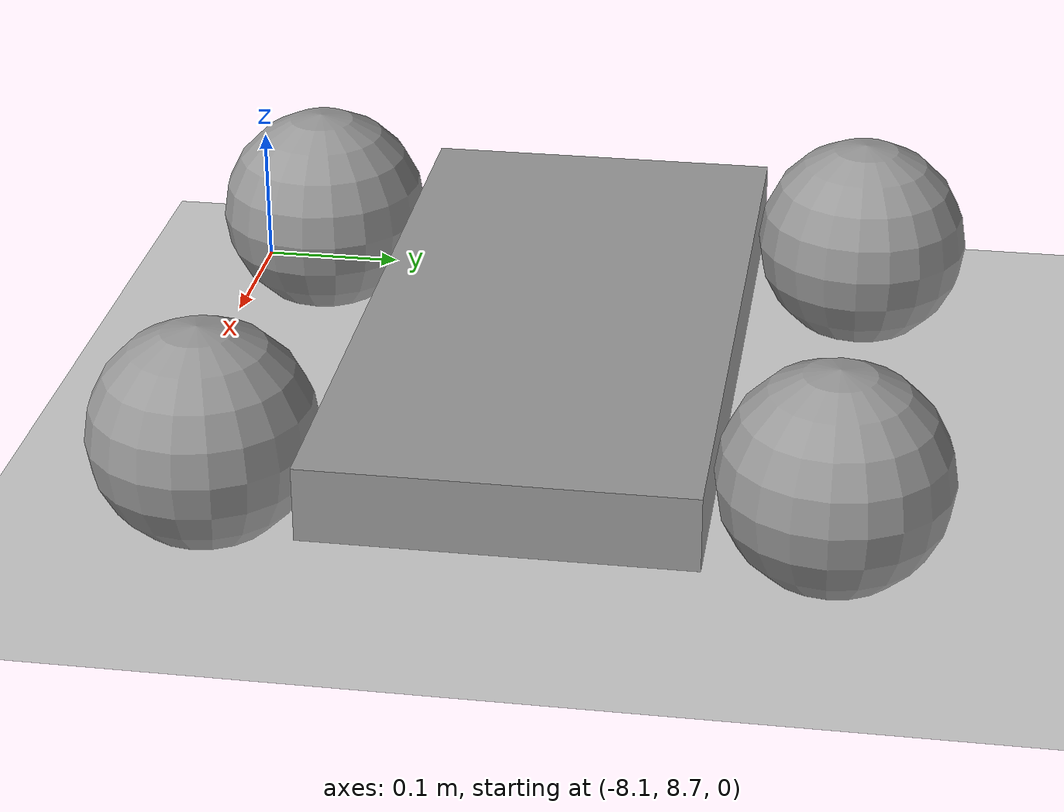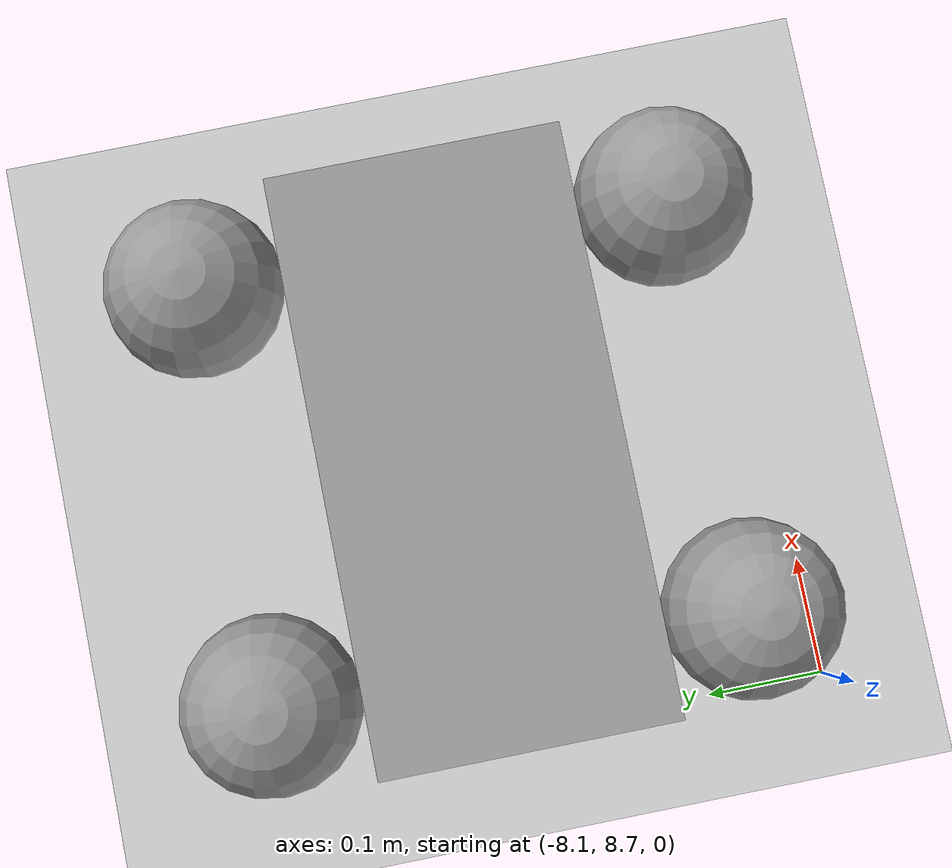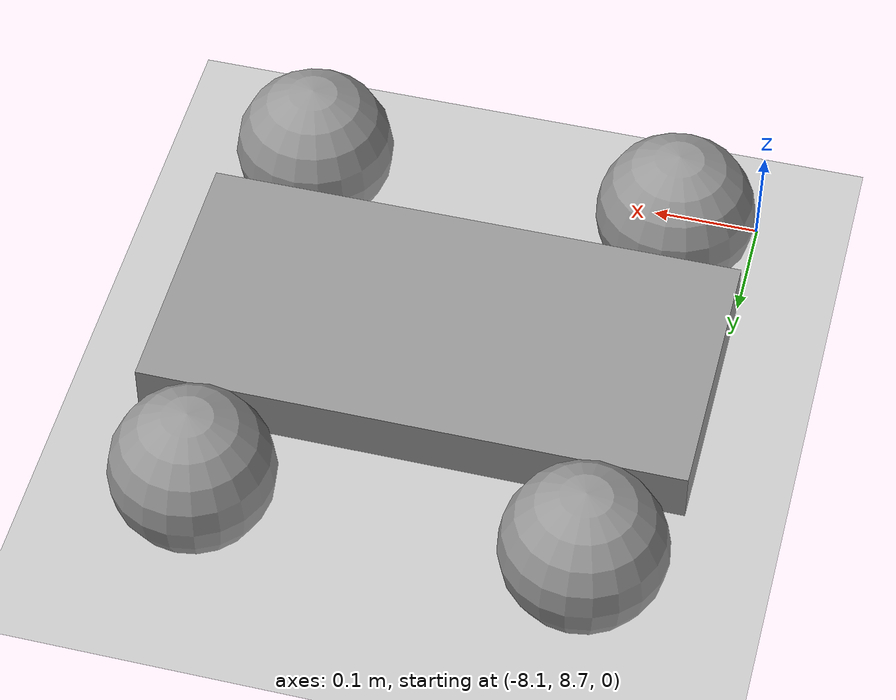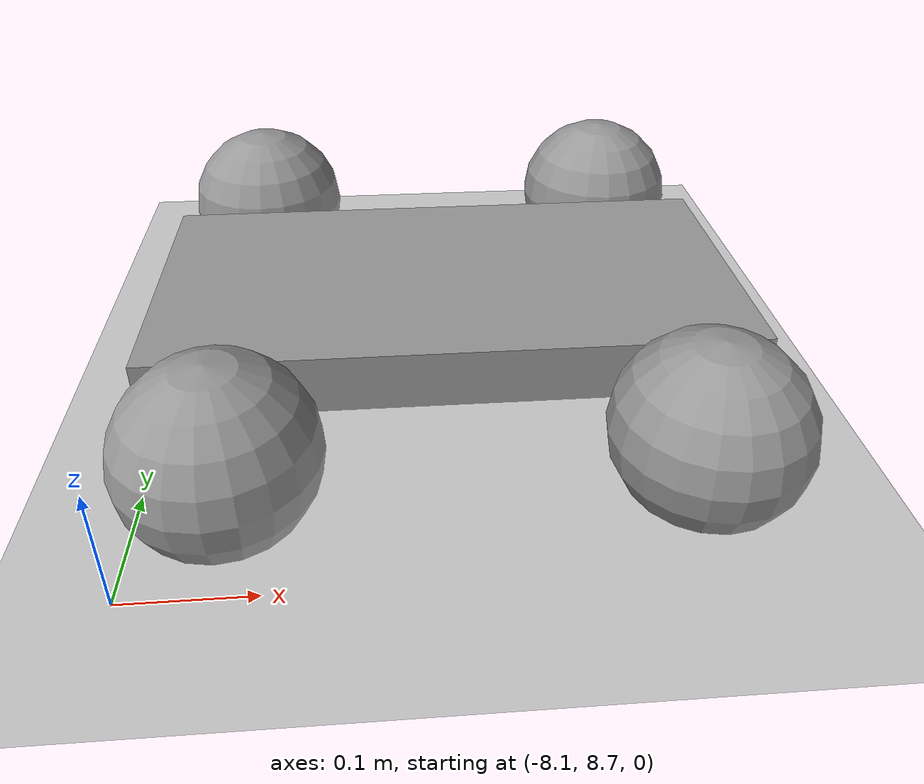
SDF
<sdf version="1.7">
 <world name="default">
  <model name="ground_plane">
   <static>1</static>
   <link name="linkgp">
    <collision name="collision">
     <geometry><plane><normal>0 0 1</normal><size>100 100</size></plane></geometry>
     <surface>
      <contact><collide_bitmask>65535</collide_bitmask></contact>
      <friction><ode><mu>100</mu><mu2>50</mu2></ode></friction>
     </surface>
    </collision>
    <visual name="visual">
     <cast_shadows>0</cast_shadows>
     <geometry><plane><normal>0 0 1</normal><size>100 100</size></plane></geometry>
     <material>
      <script><uri>file://media/materials/scripts/gazebo.material</uri><name>Gazebo/Grey</name></script>
     </material>
    </visual>
   </link>
  </model>
  <model name="Sphero_0">
   <link name="link_0">
    <inertial>
     <mass>1</mass>
     <inertia>
      <ixx>0.166667</ixx>
      <ixy>0</ixy>
      <ixz>0</ixz>
      <iyy>0.166667</iyy>
      <iyz>0</iyz>
      <izz>0.166667</izz>
     </inertia>
    </inertial>
    <pose>-0.084261 -0.070245 -0.0921 0 -0 0</pose>
    <visual name="visual">
     <geometry><box><size>0.5 0.25 0.05</size></box></geometry>
     <material>
      <lighting>1</lighting>
      <script><uri>file://media/materials/scripts/gazebo.material</uri><name>Gazebo/Grey</name></script>
      <shader type="pixel"><normal_map>__default__</normal_map></shader>
      <ambient>0.3 0.3 0.3 1</ambient>
      <diffuse>0.7 0.7 0.7 1</diffuse>
      <specular>0.01 0.01 0.01 1</specular>
      <emissive>0 0 0 1</emissive>
     </material>
    </visual>
    <collision name="collision">
     <geometry><box><size>0.5 0.25 0.05</size></box></geometry>
     <surface>
      <friction>
       <ode><mu>1</mu><mu2>1</mu2><fdir1>0 0 0</fdir1><slip1>0</slip1><slip2>0</slip2></ode>
       <torsional>
        <coefficient>1</coefficient>
        <patch_radius>0</patch_radius>
        <surface_radius>0</surface_radius>
        <use_patch_radius>1</use_patch_radius>
        <ode><slip>0</slip></ode>
       </torsional>
      </friction>
      <bounce><restitution_coefficient>0</restitution_coefficient><threshold>1e+06</threshold></bounce>
      <contact>
       <collide_without_contact>0</collide_without_contact>
       <collide_without_contact_bitmask>1</collide_without_contact_bitmask>
       <collide_bitmask>1</collide_bitmask>
       <ode>
        <soft_cfm>0</soft_cfm>
        <soft_erp>0.2</soft_erp>
        <kp>1e+13</kp>
        <kd>1</kd>
        <max_vel>0.01</max_vel>
        <min_depth>0</min_depth>
       </ode>
       <bullet>
        <split_impulse>1</split_impulse>
        <split_impulse_penetration_threshold>-0.01</split_impulse_penetration_threshold>
        <soft_cfm>0</soft_cfm>
        <soft_erp>0.2</soft_erp>
        <kp>1e+13</kp>
        <kd>1</kd>
       </bullet>
      </contact>
     </surface>
    </collision>
   </link>
   <link name="link_1">
    <inertial>
     <mass>1</mass>
     <inertia><ixx>0.1</ixx><ixy>0</ixy><ixz>0</ixz><iyy>0.1</iyy><iyz>0</iyz><izz>0.1</izz></inertia>
    </inertial>
    <pose>-0.259261 -0.270245 -0.0886 0 -0 0</pose>
    <visual name="visual">
     <geometry><sphere><radius>0.075</radius></sphere></geometry>
     <material>
      <lighting>1</lighting>
      <script><uri>file://media/materials/scripts/gazebo.material</uri><name>Gazebo/Grey</name></script>
      <shader type="pixel"><normal_map>__default__</normal_map></shader>
      <ambient>0.3 0.3 0.3 1</ambient>
      <diffuse>0.7 0.7 0.7 1</diffuse>
      <specular>0.01 0.01 0.01 1</specular>
      <emissive>0 0 0 1</emissive>
     </material>
    </visual>
    <collision name="collision">
     <geometry><sphere><radius>0.075</radius></sphere></geometry>
     <surface>
      <friction>
       <ode><mu>1</mu><mu2>1</mu2><fdir1>0 0 0</fdir1><slip1>0</slip1><slip2>0</slip2></ode>
       <torsional>
        <coefficient>1</coefficient>
        <patch_radius>0</patch_radius>
        <surface_radius>0</surface_radius>
        <use_patch_radius>1</use_patch_radius>
        <ode><slip>0</slip></ode>
       </torsional>
      </friction>
      <bounce><restitution_coefficient>0</restitution_coefficient><threshold>1e+06</threshold></bounce>
      <contact>
       <collide_without_contact>0</collide_without_contact>
       <collide_without_contact_bitmask>1</collide_without_contact_bitmask>
       <collide_bitmask>1</collide_bitmask>
       <ode>
        <soft_cfm>0</soft_cfm>
        <soft_erp>0.2</soft_erp>
        <kp>1e+13</kp>
        <kd>1</kd>
        <max_vel>0.01</max_vel>
        <min_depth>0</min_depth>
       </ode>
       <bullet>
        <split_impulse>1</split_impulse>
        <split_impulse_penetration_threshold>-0.01</split_impulse_penetration_threshold>
        <soft_cfm>0</soft_cfm>
        <soft_erp>0.2</soft_erp>
        <kp>1e+13</kp>
        <kd>1</kd>
       </bullet>
      </contact>
     </surface>
    </collision>
   </link>
   <link name="link_1_clone">
    <inertial>
     <mass>1</mass>
     <inertia><ixx>0.1</ixx><ixy>0</ixy><ixz>0</ixz><iyy>0.1</iyy><iyz>0</iyz><izz>0.1</izz></inertia>
    </inertial>
    <pose>0.090739 -0.270245 -0.0886 0 -0 0</pose>
    <visual name="visual">
     <geometry><sphere><radius>0.075</radius></sphere></geometry>
     <material>
      <lighting>1</lighting>
      <script><uri>file://media/materials/scripts/gazebo.material</uri><name>Gazebo/Grey</name></script>
      <shader type="pixel"><normal_map>__default__</normal_map></shader>
      <ambient>0.3 0.3 0.3 1</ambient>
      <diffuse>0.7 0.7 0.7 1</diffuse>
      <specular>0.01 0.01 0.01 1</specular>
      <emissive>0 0 0 1</emissive>
     </material>
    </visual>
    <collision name="collision">
     <geometry><sphere><radius>0.075</radius></sphere></geometry>
     <surface>
      <friction>
       <ode><mu>1</mu><mu2>1</mu2><fdir1>0 0 0</fdir1><slip1>0</slip1><slip2>0</slip2></ode>
       <torsional>
        <coefficient>1</coefficient>
        <patch_radius>0</patch_radius>
        <surface_radius>0</surface_radius>
        <use_patch_radius>1</use_patch_radius>
        <ode><slip>0</slip></ode>
       </torsional>
      </friction>
      <bounce><restitution_coefficient>0</restitution_coefficient><threshold>1e+06</threshold></bounce>
      <contact>
       <collide_without_contact>0</collide_without_contact>
       <collide_without_contact_bitmask>1</collide_without_contact_bitmask>
       <collide_bitmask>1</collide_bitmask>
       <ode>
        <soft_cfm>0</soft_cfm>
        <soft_erp>0.2</soft_erp>
        <kp>1e+13</kp>
        <kd>1</kd>
        <max_vel>0.01</max_vel>
        <min_depth>0</min_depth>
       </ode>
       <bullet>
        <split_impulse>1</split_impulse>
        <split_impulse_penetration_threshold>-0.01</split_impulse_penetration_threshold>
        <soft_cfm>0</soft_cfm>
        <soft_erp>0.2</soft_erp>
        <kp>1e+13</kp>
        <kd>1</kd>
       </bullet>
      </contact>
     </surface>
    </collision>
   </link>
   <link name="link_1_clone_0">
    <inertial>
     <mass>1</mass>
     <inertia><ixx>0.1</ixx><ixy>0</ixy><ixz>0</ixz><iyy>0.1</iyy><iyz>0</iyz><izz>0.1</izz></inertia>
    </inertial>
    <pose>-0.259261 0.129755 -0.0886 0 -0 0</pose>
    <visual name="visual">
     <geometry><sphere><radius>0.075</radius></sphere></geometry>
     <material>
      <lighting>1</lighting>
      <script><uri>file://media/materials/scripts/gazebo.material</uri><name>Gazebo/Grey</name></script>
      <shader type="pixel"><normal_map>__default__</normal_map></shader>
      <ambient>0.3 0.3 0.3 1</ambient>
      <diffuse>0.7 0.7 0.7 1</diffuse>
      <specular>0.01 0.01 0.01 1</specular>
      <emissive>0 0 0 1</emissive>
     </material>
    </visual>
    <collision name="collision">
     <geometry><sphere><radius>0.075</radius></sphere></geometry>
     <surface>
      <friction>
       <ode><mu>1</mu><mu2>1</mu2><fdir1>0 0 0</fdir1><slip1>0</slip1><slip2>0</slip2></ode>
       <torsional>
        <coefficient>1</coefficient>
        <patch_radius>0</patch_radius>
        <surface_radius>0</surface_radius>
        <use_patch_radius>1</use_patch_radius>
        <ode><slip>0</slip></ode>
       </torsional>
      </friction>
      <bounce><restitution_coefficient>0</restitution_coefficient><threshold>1e+06</threshold></bounce>
      <contact>
       <collide_without_contact>0</collide_without_contact>
       <collide_without_contact_bitmask>1</collide_without_contact_bitmask>
       <collide_bitmask>1</collide_bitmask>
       <ode>
        <soft_cfm>0</soft_cfm>
        <soft_erp>0.2</soft_erp>
        <kp>1e+13</kp>
        <kd>1</kd>
        <max_vel>0.01</max_vel>
        <min_depth>0</min_depth>
       </ode>
       <bullet>
        <split_impulse>1</split_impulse>
        <split_impulse_penetration_threshold>-0.01</split_impulse_penetration_threshold>
        <soft_cfm>0</soft_cfm>
        <soft_erp>0.2</soft_erp>
        <kp>1e+13</kp>
        <kd>1</kd>
       </bullet>
      </contact>
     </surface>
    </collision>
   </link>
   <link name="link_1_clone_1">
    <inertial>
     <mass>1</mass>
     <inertia><ixx>0.1</ixx><ixy>0</ixy><ixz>0</ixz><iyy>0.1</iyy><iyz>0</iyz><izz>0.1</izz></inertia>
    </inertial>
    <pose>0.090739 0.129755 -0.0886 0 -0 0</pose>
    <visual name="visual">
     <geometry><sphere><radius>0.075</radius></sphere></geometry>
     <material>
      <lighting>1</lighting>
      <script><uri>file://media/materials/scripts/gazebo.material</uri><name>Gazebo/Grey</name></script>
      <shader type="pixel"><normal_map>__default__</normal_map></shader>
      <ambient>0.3 0.3 0.3 1</ambient>
      <diffuse>0.7 0.7 0.7 1</diffuse>
      <specular>0.01 0.01 0.01 1</specular>
      <emissive>0 0 0 1</emissive>
     </material>
    </visual>
    <collision name="collision">
     <geometry><sphere><radius>0.075</radius></sphere></geometry>
     <surface>
      <friction>
       <ode><mu>1</mu><mu2>1</mu2><fdir1>0 0 0</fdir1><slip1>0</slip1><slip2>0</slip2></ode>
       <torsional>
        <coefficient>1</coefficient>
        <patch_radius>0</patch_radius>
        <surface_radius>0</surface_radius>
        <use_patch_radius>1</use_patch_radius>
        <ode><slip>0</slip></ode>
       </torsional>
      </friction>
      <bounce><restitution_coefficient>0</restitution_coefficient><threshold>1e+06</threshold></bounce>
      <contact>
       <collide_without_contact>0</collide_without_contact>
       <collide_without_contact_bitmask>1</collide_without_contact_bitmask>
       <collide_bitmask>1</collide_bitmask>
       <ode>
        <soft_cfm>0</soft_cfm>
        <soft_erp>0.2</soft_erp>
        <kp>1e+13</kp>
        <kd>1</kd>
        <max_vel>0.01</max_vel>
        <min_depth>0</min_depth>
       </ode>
       <bullet>
        <split_impulse>1</split_impulse>
        <split_impulse_penetration_threshold>-0.01</split_impulse_penetration_threshold>
        <soft_cfm>0</soft_cfm>
        <soft_erp>0.2</soft_erp>
        <kp>1e+13</kp>
        <kd>1</kd>
       </bullet>
      </contact>
     </surface>
    </collision>
   </link>
   <joint name="Front_Left" type="revolute">
    <parent>link_0</parent>
    <child>link_1</child>
    <axis>
     <xyz>0 1 0</xyz>
     <limit>
      <lower>-1.79769e+308</lower>
      <upper>1.79769e+308</upper>
      <effort>-1</effort>
      <velocity>-1</velocity>
     </limit>
     <dynamics>
      <spring_reference>0</spring_reference>
      <spring_stiffness>0</spring_stiffness>
      <damping>0</damping>
      <friction>0</friction>
     </dynamics>
    </axis>
    <physics>
     <ode><limit><cfm>0</cfm><erp>0.2</erp></limit><suspension><cfm>0</cfm><erp>0.2</erp></suspension></ode>
    </physics>
   </joint>
   <joint name="Rear_Left" type="revolute">
    <parent>link_0</parent>
    <child>link_1_clone</child>
    <axis>
     <xyz>0 1 0</xyz>
     <limit>
      <lower>-1.79769e+308</lower>
      <upper>1.79769e+308</upper>
      <effort>-1</effort>
      <velocity>-1</velocity>
     </limit>
     <dynamics>
      <spring_reference>0</spring_reference>
      <spring_stiffness>0</spring_stiffness>
      <damping>0</damping>
      <friction>0</friction>
     </dynamics>
    </axis>
    <physics>
     <ode><limit><cfm>0</cfm><erp>0.2</erp></limit><suspension><cfm>0</cfm><erp>0.2</erp></suspension></ode>
    </physics>
   </joint>
   <joint name="Front_Right" type="revolute">
    <parent>link_0</parent>
    <child>link_1_clone_0</child>
    <axis>
     <xyz>0 1 0</xyz>
     <limit>
      <lower>-1.79769e+308</lower>
      <upper>1.79769e+308</upper>
      <effort>-1</effort>
      <velocity>-1</velocity>
     </limit>
     <dynamics>
      <spring_reference>0</spring_reference>
      <spring_stiffness>0</spring_stiffness>
      <damping>0</damping>
      <friction>0</friction>
     </dynamics>
    </axis>
    <physics>
     <ode><limit><cfm>0</cfm><erp>0.2</erp></limit><suspension><cfm>0</cfm><erp>0.2</erp></suspension></ode>
    </physics>
   </joint>
   <joint name="Rear_Right" type="revolute">
    <parent>link_0</parent>
    <child>link_1_clone_1</child>
    <axis>
     <xyz>0 1 0</xyz>
     <limit>
      <lower>-1.79769e+308</lower>
      <upper>1.79769e+308</upper>
      <effort>-1</effort>
      <velocity>-1</velocity>
     </limit>
     <dynamics>
      <spring_reference>0</spring_reference>
      <spring_stiffness>0</spring_stiffness>
      <damping>0</damping>
      <friction>0</friction>
     </dynamics>
    </axis>
    <physics>
     <ode><limit><cfm>0</cfm><erp>0.2</erp></limit><suspension><cfm>0</cfm><erp>0.2</erp></suspension></ode>
    </physics>
   </joint>
   <static>0</static>
   <pose>-7.76914 9.03281 0.1636 0 -0 0.000146</pose>
  </model>
 </world>
</sdf>
